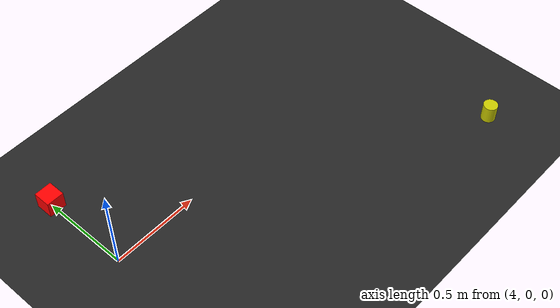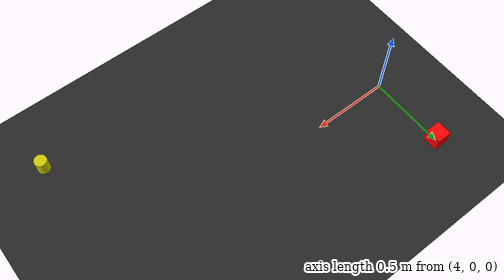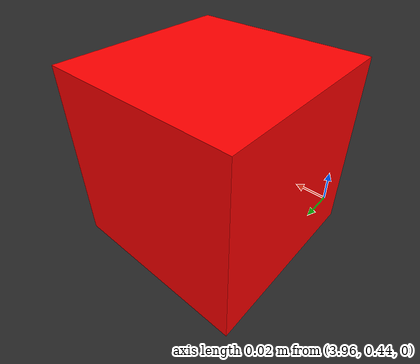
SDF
<?xml version="1.0" ?>
<sdf version="1.8">
  <world name="runway_world">
    <physics name="1ms" type="ignored">
      <max_step_size>0.001</max_step_size>
      <real_time_factor>1.0</real_time_factor>
    </physics>

    <plugin filename="gz-sim-physics-system" name="gz::sim::systems::Physics"/>
    <plugin filename="gz-sim-user-commands-system" name="gz::sim::systems::UserCommands"/>
    <plugin filename="gz-sim-scene-broadcaster-system" name="gz::sim::systems::SceneBroadcaster"/>
    <plugin filename="gz-sim-sensors-system" name="gz::sim::systems::Sensors">
      <render_engine>ogre2</render_engine>
    </plugin>

    <light type="directional" name="sun">
      <cast_shadows>true</cast_shadows>
      <pose>0 0 10 0 0 0</pose>
      <diffuse>0.8 0.8 0.8 1</diffuse>
      <specular>0.2 0.2 0.2 1</specular>
      <direction>-0.5 0.1 -0.9</direction>
    </light>

    <model name="runway_ground">
      <static>true</static>
      <link name="link">
        <collision name="collision">
          <geometry>
            <plane>
              <normal>0 0 1</normal>
              <size>100 20</size>
            </plane>
          </geometry>
        </collision>
        <visual name="visual">
          <geometry>
            <plane>
              <normal>0 0 1</normal>
              <size>100 20</size>
            </plane>
          </geometry>
          <material>
            <ambient>0.15 0.15 0.15 1</ambient>
            <diffuse>0.15 0.15 0.15 1</diffuse>
          </material>
        </visual>
      </link>
    </model>

    <model name="fod_box_1">
      <pose>4.0 0.5 0.05 0 0 0</pose>
      <link name="link">
        <collision name="collision">
          <geometry>
            <box><size>0.1 0.1 0.1</size></box>
          </geometry>
        </collision>
        <visual name="visual">
          <geometry>
            <box><size>0.1 0.1 0.1</size></box>
          </geometry>
          <material>
            <ambient>1.0 0.0 0.0 1</ambient>
            <diffuse>1.0 0.0 0.0 1</diffuse>
          </material>
        </visual>
      </link>
    </model>

    <model name="fod_bolt_2">
      <pose>6.0 -0.8 0.05 0 0 0</pose>
      <link name="link">
        <collision name="collision">
          <geometry>
            <cylinder><radius>0.04</radius><length>0.1</length></cylinder>
          </geometry>
        </collision>
        <visual name="visual">
          <geometry>
            <cylinder><radius>0.04</radius><length>0.1</length></cylinder>
          </geometry>
          <material>
            <ambient>0.8 0.8 0.0 1</ambient>
            <diffuse>0.8 0.8 0.0 1</diffuse>
          </material>
        </visual>
      </link>
    </model>
  </world>
</sdf>
